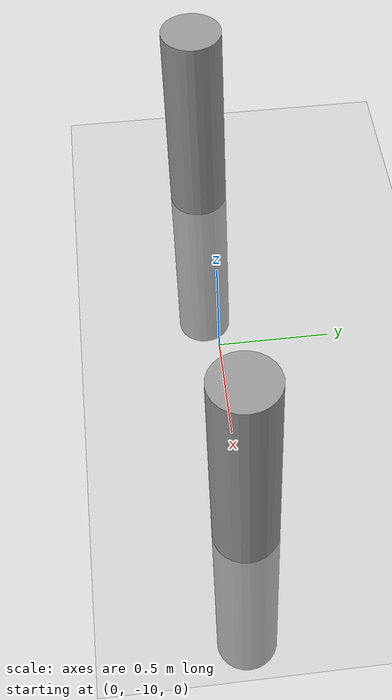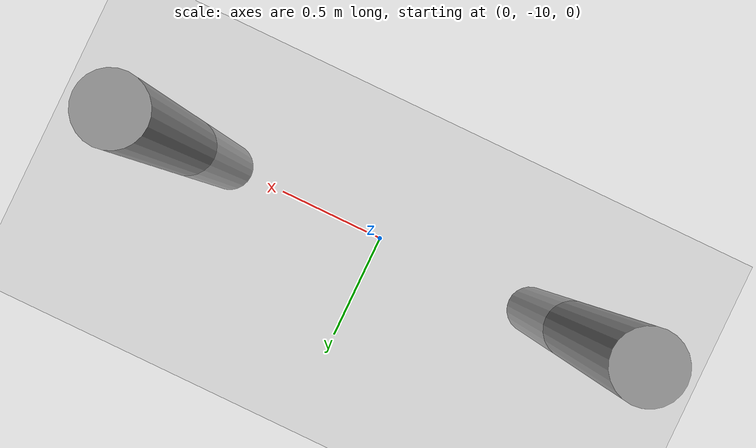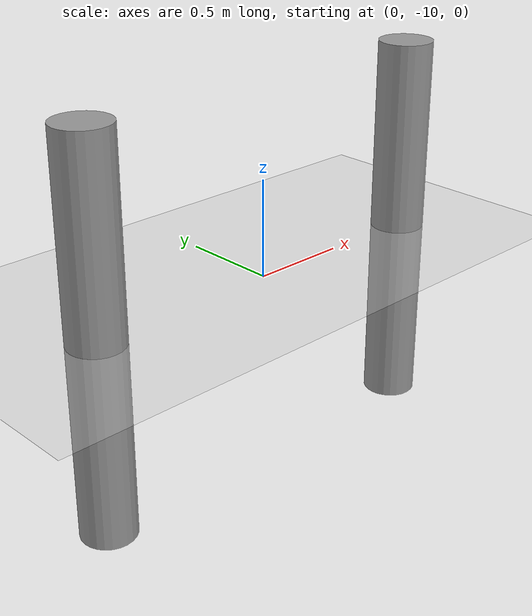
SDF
<sdf version="1.6">
 <world name="default">
  <model name="ground_plane">
   <static>1</static>
   <link name="link">
    <collision name="collision">
     <geometry><plane><normal>0 0 1</normal><size>100 100</size></plane></geometry>
     <surface><friction><ode><mu>100</mu><mu2>50</mu2></ode></friction></surface>
    </collision>
    <visual name="visual">
     <cast_shadows>0</cast_shadows>
     <geometry><plane><normal>0 0 1</normal><size>100 100</size></plane></geometry>
     <material>
      <script><uri>file://media/materials/scripts/gazebo.material</uri><name>Gazebo/Grey</name></script>
     </material>
    </visual>
   </link>
  </model>
  <model name="my_cylinder014_clone_24">
   <pose>1 -10 0 0 -0 0</pose>
   <link name="my_cylinder014::link">
    <inertial>
     <mass>1</mass>
     <inertia><ixx>0.145833</ixx><ixy>0</ixy><ixz>0</ixz><iyy>0.145833</iyy><iyz>0</iyz><izz>0.125</izz></inertia>
    </inertial>
    <visual name="visual">
     <geometry><cylinder><radius>0.14</radius><length>2</length></cylinder></geometry>
     <material>
      <script><name>Gazebo/Grey</name><uri>file://media/materials/scripts/gazebo.material</uri></script>
      <ambient>0.3 0.3 0.3 1</ambient>
      <diffuse>0.7 0.7 0.7 1</diffuse>
      <specular>1 0.01 0.01 1</specular>
      <emissive>0 0 0 1</emissive>
      <shader type="vertex"><normal_map>__default__</normal_map></shader>
     </material>
    </visual>
    <collision name="collision">
     <geometry><cylinder><radius>0.14</radius><length>2</length></cylinder></geometry>
     <surface>
      <friction>
       <ode><mu>1</mu><mu2>1</mu2><fdir1>0 0 0</fdir1><slip1>0</slip1><slip2>0</slip2></ode>
       <torsional>
        <coefficient>1</coefficient>
        <patch_radius>0</patch_radius>
        <surface_radius>0</surface_radius>
        <use_patch_radius>1</use_patch_radius>
        <ode><slip>0</slip></ode>
       </torsional>
      </friction>
      <bounce><restitution_coefficient>0</restitution_coefficient><threshold>1e+06</threshold></bounce>
      <contact>
       <collide_without_contact>0</collide_without_contact>
       <collide_without_contact_bitmask>1</collide_without_contact_bitmask>
       <collide_bitmask>1</collide_bitmask>
       <ode>
        <soft_cfm>0</soft_cfm>
        <soft_erp>0.2</soft_erp>
        <kp>1e+13</kp>
        <kd>1</kd>
        <max_vel>0.01</max_vel>
        <min_depth>0</min_depth>
       </ode>
       <bullet>
        <split_impulse>1</split_impulse>
        <split_impulse_penetration_threshold>-0.01</split_impulse_penetration_threshold>
        <soft_cfm>0</soft_cfm>
        <soft_erp>0.2</soft_erp>
        <kp>1e+13</kp>
        <kd>1</kd>
       </bullet>
      </contact>
     </surface>
    </collision>
   </link>
   <static>1</static>
  </model>
  <model name="my_cylinder014_clone_23">
   <pose>-1 -10 0 0 -0 0</pose>
   <link name="my_cylinder014::link">
    <inertial>
     <mass>1</mass>
     <inertia><ixx>0.145833</ixx><ixy>0</ixy><ixz>0</ixz><iyy>0.145833</iyy><iyz>0</iyz><izz>0.125</izz></inertia>
    </inertial>
    <visual name="visual">
     <geometry><cylinder><radius>0.14</radius><length>2</length></cylinder></geometry>
     <material>
      <script><name>Gazebo/Grey</name><uri>file://media/materials/scripts/gazebo.material</uri></script>
      <ambient>0.3 0.3 0.3 1</ambient>
      <diffuse>0.7 0.7 0.7 1</diffuse>
      <specular>1 0.01 0.01 1</specular>
      <emissive>0 0 0 1</emissive>
      <shader type="vertex"><normal_map>__default__</normal_map></shader>
     </material>
    </visual>
    <collision name="collision">
     <geometry><cylinder><radius>0.14</radius><length>2</length></cylinder></geometry>
     <surface>
      <friction>
       <ode><mu>1</mu><mu2>1</mu2><fdir1>0 0 0</fdir1><slip1>0</slip1><slip2>0</slip2></ode>
       <torsional>
        <coefficient>1</coefficient>
        <patch_radius>0</patch_radius>
        <surface_radius>0</surface_radius>
        <use_patch_radius>1</use_patch_radius>
        <ode><slip>0</slip></ode>
       </torsional>
      </friction>
      <bounce><restitution_coefficient>0</restitution_coefficient><threshold>1e+06</threshold></bounce>
      <contact>
       <collide_without_contact>0</collide_without_contact>
       <collide_without_contact_bitmask>1</collide_without_contact_bitmask>
       <collide_bitmask>1</collide_bitmask>
       <ode>
        <soft_cfm>0</soft_cfm>
        <soft_erp>0.2</soft_erp>
        <kp>1e+13</kp>
        <kd>1</kd>
        <max_vel>0.01</max_vel>
        <min_depth>0</min_depth>
       </ode>
       <bullet>
        <split_impulse>1</split_impulse>
        <split_impulse_penetration_threshold>-0.01</split_impulse_penetration_threshold>
        <soft_cfm>0</soft_cfm>
        <soft_erp>0.2</soft_erp>
        <kp>1e+13</kp>
        <kd>1</kd>
       </bullet>
      </contact>
     </surface>
    </collision>
   </link>
   <static>1</static>
  </model>
  <model name="my_cylinder014_clone_23">
   <pose>-1 -10 0 0 -0 0</pose>
   <link name="my_cylinder014::link">
    <inertial>
     <mass>1</mass>
     <inertia><ixx>0.145833</ixx><ixy>0</ixy><ixz>0</ixz><iyy>0.145833</iyy><iyz>0</iyz><izz>0.125</izz></inertia>
    </inertial>
    <visual name="visual">
     <geometry><cylinder><radius>0.14</radius><length>2</length></cylinder></geometry>
     <material>
      <script><name>Gazebo/Grey</name><uri>file://media/materials/scripts/gazebo.material</uri></script>
      <ambient>0.3 0.3 0.3 1</ambient>
      <diffuse>0.7 0.7 0.7 1</diffuse>
      <specular>1 0.01 0.01 1</specular>
      <emissive>0 0 0 1</emissive>
      <shader type="vertex"><normal_map>__default__</normal_map></shader>
     </material>
    </visual>
    <collision name="collision">
     <geometry><cylinder><radius>0.14</radius><length>2</length></cylinder></geometry>
     <surface>
      <friction>
       <ode><mu>1</mu><mu2>1</mu2><fdir1>0 0 0</fdir1><slip1>0</slip1><slip2>0</slip2></ode>
       <torsional>
        <coefficient>1</coefficient>
        <patch_radius>0</patch_radius>
        <surface_radius>0</surface_radius>
        <use_patch_radius>1</use_patch_radius>
        <ode><slip>0</slip></ode>
       </torsional>
      </friction>
      <bounce><restitution_coefficient>0</restitution_coefficient><threshold>1e+06</threshold></bounce>
      <contact>
       <collide_without_contact>0</collide_without_contact>
       <collide_without_contact_bitmask>1</collide_without_contact_bitmask>
       <collide_bitmask>1</collide_bitmask>
       <ode>
        <soft_cfm>0</soft_cfm>
        <soft_erp>0.2</soft_erp>
        <kp>1e+13</kp>
        <kd>1</kd>
        <max_vel>0.01</max_vel>
        <min_depth>0</min_depth>
       </ode>
       <bullet>
        <split_impulse>1</split_impulse>
        <split_impulse_penetration_threshold>-0.01</split_impulse_penetration_threshold>
        <soft_cfm>0</soft_cfm>
        <soft_erp>0.2</soft_erp>
        <kp>1e+13</kp>
        <kd>1</kd>
       </bullet>
      </contact>
     </surface>
    </collision>
   </link>
   <static>1</static>
  </model>
 </world>
</sdf>
